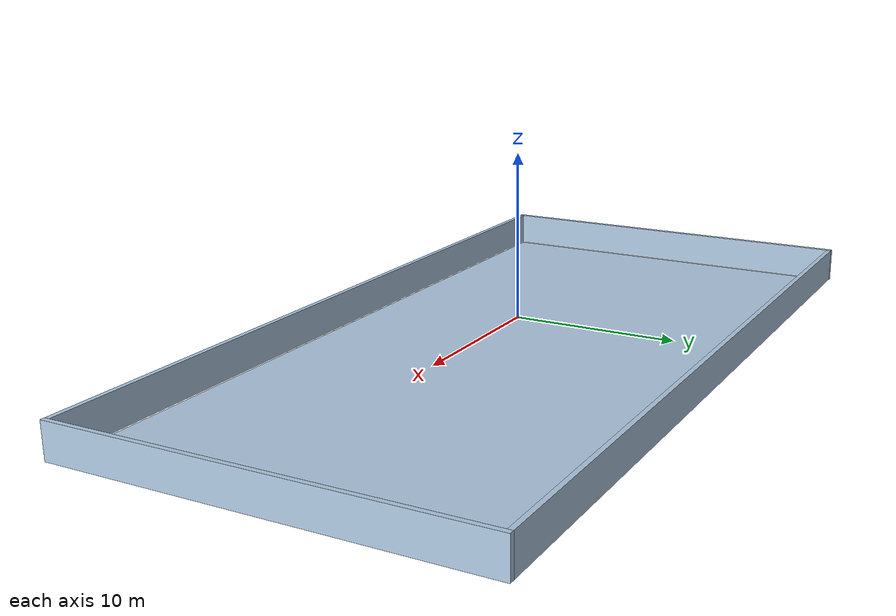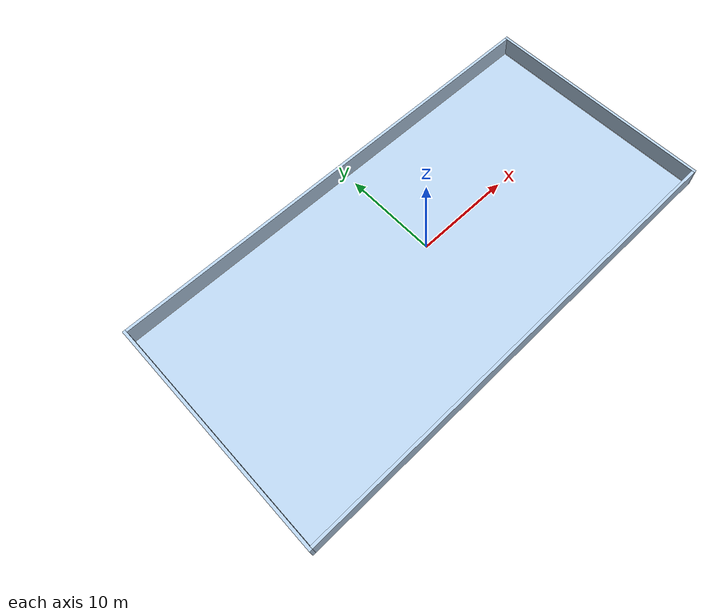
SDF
<?xml version="1.0" ?>
<sdf version="1.8">
  <world name="pool_world">

    <plugin
      filename="libignition-gazebo-physics-system"
      name="gz::sim::systems::Physics">
    </plugin>
    <plugin
      filename="libignition-gazebo-user-commands-system"
      name="gz::sim::systems::UserCommands">
    </plugin>
    <plugin
      filename="libignition-gazebo-scene-broadcaster-system"
      name="gz::sim::systems::SceneBroadcaster">
    </plugin>
    <plugin
      filename="libignition-gazebo-sensors-system"
      name="gz::sim::systems::Sensors">
      <render_engine>ogre2</render_engine>
    </plugin>
    <plugin
      filename="libignition-gazebo-imu-system"
      name="gz::sim::systems::Imu">
    </plugin>
    <plugin
      filename="libignition-gazebo-magnetometer-system"
      name="gz::sim::systems::Magnetometer">
    </plugin>

    <!-- Physics / gravity -->
    <gravity>0 0 -9.81</gravity>
    <magnetic_field>6e-6 2e-5 -4e-5</magnetic_field>
    <atmosphere type="adiabatic"/>
    <scene>
      <ambient>0.4 0.4 0.45 1</ambient>
      <background>0.85 0.9 1 1</background>
      <shadows>true</shadows>
    </scene>

    <!-- Use DART (default in Fortress) -->
    <physics name="dart" type="ignition-physics-dartsim">
      <max_step_size>0.001</max_step_size>
      <real_time_factor>1.0</real_time_factor>
      <real_time_update_rate>1000</real_time_update_rate>
    </physics>

    <include>
      <uri>
        https://fuel.gazebosim.org/1.0/OpenRobotics/models/Sun
      </uri>
    </include>

    <!--
      Pool geometry (static): 50m x 25m; depth ~2.0m. Origin is at pool center, water surface z=0.
      The floor is at z = -2.2; walls are 0.3m thick boxes enclosing the water.
    -->
    <model name="pool_structure">
      <static>true</static>
      <pose>0 0 -2.2 0 0 0</pose>

      <include>
        <uri>model://pool_ground25</uri>
        <pose>0 0 0 0 0 0</pose>
      </include>

      <!-- Long walls (x direction) -->
      <link name="wall_x_pos">
        <pose>25.15 0 1.1 0 0 0</pose>
        <collision name="col">
          <geometry>
            <box>
              <size>0.3 25.6 2.2</size>
            </box>
          </geometry>
        </collision>
        <visual name="vis">
          <geometry>
            <box>
              <size>0.3 25.6 2.2</size>
            </box>
          </geometry>
          <material>
            <ambient>0.7 0.8 0.9 1</ambient>
            <diffuse>0.7 0.8 0.9 1</diffuse>
            <specular>0.3 0.3 0.3 1</specular>
            <emissive>0 0 0 1</emissive>
          </material>
        </visual>
      </link>

      <link name="wall_x_neg">
        <pose>-25.15 0 1.1 0 0 0</pose>
        <collision name="col">
          <geometry>
            <box>
              <size>0.3 25.6 2.2</size>
            </box>
          </geometry>
        </collision>
        <visual name="vis">
          <geometry>
            <box>
              <size>0.3 25.6 2.2</size>
            </box>
          </geometry>
          <material>
            <ambient>0.7 0.8 0.9 1</ambient>
            <diffuse>0.7 0.8 0.9 1</diffuse>
            <specular>0.3 0.3 0.3 1</specular>
            <emissive>0 0 0 1</emissive>
          </material>
        </visual>
      </link>

      <!-- Short walls (y direction) -->
      <link name="wall_y_pos">
        <pose>0 12.65 1.1 0 0 0</pose>
        <collision name="col">
          <geometry>
            <box>
              <size>50 0.3 2.2</size>
            </box>
          </geometry>
        </collision>
        <visual name="vis">
          <geometry>
            <box>
              <size>50 0.3 2.2</size>
            </box>
          </geometry>
          <material>
            <ambient>0.7 0.8 0.9 1</ambient>
            <diffuse>0.7 0.8 0.9 1</diffuse>
            <specular>0.3 0.3 0.3 1</specular>
            <emissive>0 0 0 1</emissive>
          </material>
        </visual>
      </link>

      <link name="wall_y_neg">
        <pose>0 -12.65 1.1 0 0 0</pose>
        <collision name="col">
          <geometry>
            <box>
              <size>50 0.3 2.2</size>
            </box>
          </geometry>
        </collision>
        <visual name="vis">
          <geometry>
            <box>
              <size>50 0.3 2.2</size>
            </box>
          </geometry>
          <material>
            <ambient>0.7 0.8 0.9 1</ambient>
            <diffuse>0.7 0.8 0.9 1</diffuse>
            <specular>0.3 0.3 0.3 1</specular>
            <emissive>0 0 0 1</emissive>
          </material>
        </visual>
      </link>
    </model>

    <!-- World-level Buoyancy system: uniform water region filling the pool -->
    <plugin filename="ignition-gazebo-buoyancy-system" name="ignition::gazebo::systems::Buoyancy">
      <graded_buoyancy>
        <default_density>1000</default_density>
        <density_change>
          <above_depth>0</above_depth>
          <density>1</density>
        </density_change>
      </graded_buoyancy>

    </plugin>

  </world>
</sdf>

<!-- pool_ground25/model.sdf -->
<sdf version="1.7">
  <model name="pool_ground25">
    <static>true</static>

    <link name="pool_floor">
      <collision name="collision">
        <geometry>
          <plane>
            <normal>0 0 1</normal>
            <size>50 25</size>
          </plane>
        </geometry>
        <surface>
          <contact>
            <collide_bitmask>0x01</collide_bitmask>
          </contact>
          <friction>
            <ode>
              <mu>0.8</mu>
              <mu2>0.8</mu2>
            </ode>
          </friction>
        </surface>
      </collision>

      <visual name="visual">
        <geometry>
          <plane>
            <normal>0 0 1</normal>
            <size>50 25</size>
          </plane>
        </geometry>
        <material>
          <!-- Direct texture approach -->
          <ambient>0.7 0.8 0.9 1</ambient>
          <diffuse>0.7 0.8 0.9 1</diffuse>
          <specular>0.3 0.3 0.3 1</specular>
          <emissive>0 0 0 1</emissive>
          <pbr>
            <metal>
              <albedo_map>model://pool_ground25/materials/textures/pool_lanes.png</albedo_map>
            </metal>
          </pbr>
        </material>
      </visual>
    </link>
  </model>
</sdf>
